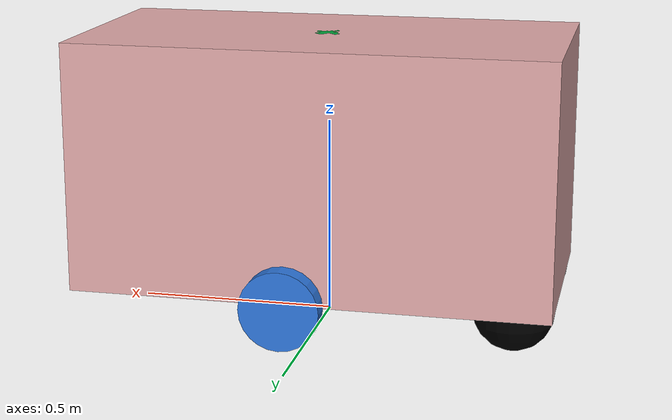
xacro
<?xml version="1.0"?>
<robot xmlns:xacro="http://www.ros.org/wiki/xacro" name="Servera">

    <!-- reference taken from: https://github.com/linorobot/linorobot2/tree/jazzy -->

    <xacro:include filename="$(find servera_control)/urdf/servera_properties.xacro"/>  <!-- All the dimensions | Integral urdf -->
    <xacro:include filename="$(find servera_control)/urdf/solid_bodies.xacro"/>  <!-- All the definitions of the primitive bodies| Integral urdf -->
    <xacro:include filename="$(find servera_control)/urdf/material.xacro"/>  <!-- All the meterial list | consemtics -->
    <xacro:include filename="$(find servera_control)/urdf/gz_plugins.xacro"/>  <!-- gz tags | gz integrartion -->

    <xacro:base
        length="${base_length}"
        width="${base_width}"
        height="${base_height}"
        mass="${base_mass}"
        wheel_radius="${wheel_radius}"
        wheel_pos_z="${wheel_pos_z}"
        mesh_file=""
    />

    <xacro:wheel
        side="left"
        radius="${wheel_radius}"
        width="${wheel_width}"
        pos_x="${wheel_pos_x}"
        pos_y="${wheel_pos_y}"
        pos_z="${wheel_pos_z}"
        mass="${wheel_mass}"
        mesh_file=""
    />

    <xacro:wheel
        side="right"
        radius="${wheel_radius}"
        width="${wheel_width}"
        pos_x="${wheel_pos_x}"
        pos_y="${-wheel_pos_y}"
        pos_z="${wheel_pos_z}"
        mass="${wheel_mass}"
        mesh_file=""
    />

    <xacro:lidar
        update_rate="10"
        ray_count="360"
        min_angle="-3.14159"
        max_angle="3.14159"
        min_range="0.1"
        max_range="10.0"
        frame_id="lidar_link"
        topic_name="scan">  <!-- Do not use "/" for topic names, ie "/scan"; instead use "scan"-->
        <origin xyz="0.0 0.0 ${base_height-wheel_radius}" rpy="0 0 0"/>
    </xacro:lidar>

    <xacro:caster_wheel
      side="right"
      mass="0.01"
      base_length="${base_length}"
      base_width="${base_width}"
      wheel_radius="${wheel_radius}"
      wheel_pos_z="${wheel_pos_z}"
    />

    <xacro:caster_wheel
      side="left"
      mass="0.01"
      base_length="${base_length}"
      base_width="${base_width}"
      wheel_radius="${wheel_radius}"
      wheel_pos_z="${wheel_pos_z}"
    />
</robot>

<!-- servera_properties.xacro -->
<robot xmlns:xacro="http://ros.org/wiki/xacro">

  <xacro:property name="base_length" value="1.2" />
  <xacro:property name="base_width" value="0.6" />
  <xacro:property name="base_height" value="0.625" />
  <xacro:property name="base_mass" value="50" />

  <xacro:property name="wheel_radius" value="0.1" />
  <xacro:property name="wheel_width" value="0.05" />

  <xacro:property name="wheel_pos_x" value="0.05" />
  <xacro:property name="wheel_pos_y" value="0.325" />
  <xacro:property name="wheel_pos_z" value="-0.1" />

  <xacro:property name="wheel_mass" value=".3" />
  <xacro:property name="wheel_torque" value="20" />

  <xacro:property name="front_caster_wheel" value="true" />
  <xacro:property name="rear_caster_wheel" value="true" />

</robot>

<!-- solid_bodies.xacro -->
<robot xmlns:xacro="http://ros.org/wiki/xacro">

  <xacro:macro name="base" params="length width height mass wheel_radius wheel_pos_z mesh_file">

    <link name="base_footprint"/>

    <link name="base_link">
      <visual>
        <origin xyz="0 0 ${height/2 - wheel_radius}" rpy="0 0 0"/>
        <geometry>
          <xacro:if value="${mesh_file == ''}">
            <box size="${length} ${width} ${height}"/>
          </xacro:if>
          <xacro:unless value="${mesh_file == ''}">
            <mesh filename="${mesh_file}" scale="1 1 1"/>
          </xacro:unless>
        </geometry>
        <material name="yellow">
          <color rgba="0.8784 0.6627 0.6627 1.0"/>
        </material>
      </visual>

      <collision>
        <origin xyz="0 0 ${height/2 - wheel_radius}" rpy="0 0 0"/>
        <geometry>
          <box size="${length} ${width} ${height}"/>
        </geometry>
      </collision>

      <inertial>
        <origin xyz="0 0 ${height/2 - wheel_radius}" rpy="0 0 0"/>
        <mass value="${mass}"/>
        <inertia ixx="${(1/12) * mass * ((width  * width)  + (height * height))}" ixy="0.0" ixz="0.0"
                 iyy="${(1/12) * mass * ((length * length) + (height * height))}" iyz="0.0"
                 izz="${(1/12) * mass * ((length * length) + (width  * width))}"/>
      </inertial>
    </link>

    <gazebo reference="base_link">
      <visual>
        <material>
          <ambient>0.8392 0.6314 0.0 1.0</ambient>
          <diffuse>0.8392 0.6314 0.0 1.0</diffuse>
          <specular>0.99 0.99 0.99 1.0</specular>
          <emissive>0.0 0.0 0.0 0.0</emissive>
        </material>
      </visual>
    </gazebo>

    <joint name="base_to_footprint" type="fixed">
      <parent link="base_footprint"/>
      <child link="base_link"/>
      <origin xyz="0 0 ${wheel_radius - wheel_pos_z}" rpy="0 0 0"/>
    </joint>
  </xacro:macro>

<!-- ====================================================== Wheels ============================================ -->

  <xacro:macro name="wheel" params="side radius width pos_x pos_y pos_z mass mesh_file">
    <link name="${side}_wheel_link">
      <visual>
        <origin xyz="0 0 0" rpy="${pi/2} 0 0"/>
        <geometry>
          <xacro:if value="${mesh_file == ''}">
            <cylinder radius="${radius}" length="${width}"/>
          </xacro:if>
          <xacro:unless value="${mesh_file == ''}">
            <mesh filename="${mesh_file}" scale="1 1 1"/>
          </xacro:unless>
        </geometry>
        <material name="blue">
            <color rgba="0.1764 0.4588 0.8509 1.0"/>
        </material>
      </visual>
      <collision>
        <origin xyz="0 0 0" rpy="${pi/2} 0 0"/>
        <geometry>
          <cylinder radius="${radius}" length="${width}"/>
        </geometry>
      </collision>

      <inertial>
        <origin xyz="0 0 0" rpy="0 0 0"/>
        <mass value="${mass}"/>
        <inertia ixx="${(2/5) * mass * (radius * radius)}" ixy="0" ixz="0"
                 iyy="${(2/5) * mass * (radius * radius)}" iyz="0"
                 izz="${(2/5) * mass * (radius * radius)}" />
      </inertial>
    </link>
    <gazebo reference="${side}_wheel_link">
      <mu1>1.0</mu1>
      <mu2>1.0</mu2>
      <kp>10000000.0</kp>
      <kd>1.0</kd>
      <visual>
        <material>
          <ambient>0.1764 0.4588 0.8509 1.0</ambient>
          <diffuse>0.1764 0.4588 0.8509 1.0</diffuse>
          <specular>0.1764 0.4588 0.8509 1.0</specular>
          <emissive>0.0 0.0 0.0 0.0</emissive>
        </material>
      </visual>
    </gazebo>
    <joint name="${side}_wheel_joint" type="continuous">
      <axis xyz="0 1 0" />
      <parent link="base_link"/>
      <child link="${side}_wheel_link"/>
      <origin xyz="${pos_x} ${pos_y} ${pos_z}" rpy="0 0 0"/>
    </joint>
  </xacro:macro>

<!-- ======================================================  Castor Wheels ============================================ -->

  <xacro:macro name="caster_wheel" params="side mass base_length base_width wheel_radius wheel_pos_z">
    <xacro:property name="caster_wheel_radius" value="${(wheel_radius - wheel_pos_z) / 2}" />

    <!-- ADD "base_length" IN THE 'params' LIST, IF YOU WANT TO UNCOMMENT THE FOLLOWING
    (N.B: this snippet is taken from linorobot2, and is not reuired in servera) -->

    <xacro:if value="${side == 'right'}">
        <xacro:property name="caster_wheel_x" value="-${(base_length / 2) - caster_wheel_radius}" />
        <xacro:property name="caster_wheel_y" value="-${(base_width / 2) - caster_wheel_radius}" />
      </xacro:if>

    <xacro:if value="${side == 'left'}">
        <xacro:property name="caster_wheel_x" value="-${(base_length / 2) - caster_wheel_radius}" />
        <xacro:property name="caster_wheel_y" value="${(base_width / 2) - caster_wheel_radius}" />
    </xacro:if>

    <link name="${side}_caster_wheel_link">
      <visual>
        <origin xyz="0 0 0" rpy="0 0 0"/>
        <geometry>
          <sphere radius="${caster_wheel_radius}" />
        </geometry>
        <material name="black">
            <color rgba="0.0 0.0 0.0 1.0"/>
        </material>
      </visual>

      <collision>
        <origin xyz="0 0 0" rpy="0 0 0"/>
        <geometry>
          <sphere radius="${caster_wheel_radius}" />
        </geometry>
      </collision>

      <inertial>
        <origin xyz="0 0 0" rpy="0 0 0"/>
        <mass value="${mass}"/>
        <inertia ixx="${(2/5) * mass * (caster_wheel_radius * caster_wheel_radius)}" ixy="0" ixz="0"
                 iyy="${(2/5) * mass * (caster_wheel_radius * caster_wheel_radius)}" iyz="0"
                 izz="${(2/5) * mass * (caster_wheel_radius * caster_wheel_radius)}" />
      </inertial>
    </link>

    <gazebo reference="${side}_caster_wheel_link">
        <mu1>0.01</mu1>
        <mu2>0.01</mu2>
    </gazebo>

    <joint name="${side}_caster_wheel_joint" type="fixed">
      <parent link="base_link"/>
      <child link="${side}_caster_wheel_link"/>
      <origin xyz=" ${caster_wheel_x} ${caster_wheel_y} -${caster_wheel_radius}" rpy="0 0 0"/>
    </joint>
  </xacro:macro>

</robot>

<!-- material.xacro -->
<robot xmlns:xacro="http://www.ros.org/wiki/xacro">

  <!-- Basic Primary Colors -->
  <material name="red">
    <color rgba="1.0 0.0 0.0 1.0"/>
  </material>

  <material name="green">
    <color rgba="0.0 1.0 0.0 1.0"/>
  </material>

  <material name="blue">
    <color rgba="0.0 0.0 1.0 1.0"/>
  </material>

  <material name="white">
    <color rgba="1.0 1.0 1.0 1.0"/>
  </material>

  <material name="black">
    <color rgba="0.0 0.0 0.0 1.0"/>
  </material>

  <material name="grey">
    <color rgba="0.5 0.5 0.5 1.0"/>
  </material>

  <material name="light_grey">
    <color rgba="0.7 0.7 0.7 1.0"/>
  </material>

  <material name="dark_grey">
    <color rgba="0.3 0.3 0.3 1.0"/>
  </material>

  <!-- Secondary Colors -->
  <material name="yellow">
    <color rgba="1.0 1.0 0.0 1.0"/>
  </material>

  <material name="cyan">
    <color rgba="0.0 1.0 1.0 1.0"/>
  </material>

  <material name="magenta">
    <color rgba="1.0 0.0 1.0 1.0"/>
  </material>

  <material name="orange">
    <color rgba="1.0 0.647 0.0 1.0"/>
  </material>

  <material name="purple">
    <color rgba="0.5 0.0 0.5 1.0"/>
  </material>

  <material name="pink">
    <color rgba="1.0 0.753 0.796 1.0"/>
  </material>

  <material name="brown">
    <color rgba="0.647 0.165 0.165 1.0"/>
  </material>

  <!-- Darker Variants -->
  <material name="dark_red">
    <color rgba="0.5 0.0 0.0 1.0"/>
  </material>

  <material name="dark_green">
    <color rgba="0.0 0.5 0.0 1.0"/>
  </material>

  <material name="dark_blue">
    <color rgba="0.0 0.0 0.5 1.0"/>
  </material>

  <!-- Lighter Variants -->
  <material name="light_red">
    <color rgba="1.0 0.5 0.5 1.0"/>
  </material>

  <material name="light_green">
    <color rgba="0.5 1.0 0.5 1.0"/>
  </material>

  <material name="light_blue">
    <color rgba="0.5 0.5 1.0 1.0"/>
  </material>

  <!-- Metallic Materials -->
  <material name="silver">
    <color rgba="0.75 0.75 0.75 1.0"/>
  </material>

  <material name="gold">
    <color rgba="1.0 0.843 0.0 1.0"/>
  </material>

</robot>

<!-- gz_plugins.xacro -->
<robot xmlns:xacro="http://www.ros.org/wiki/xacro" >
    <xacro:include filename="$(find servera_control)/urdf/gz_lidar.xacro"/>
    <xacro:include filename="$(find servera_control)/urdf/gz_ros2_control.xacro"/> <!-- gz only-->
    <xacro:include filename="$(find servera_control)/urdf/gz-hw-system_ros2_control.xacro"/>

    <gazebo>
        <plugin filename="gz-sim-sensors-system" name="gz::sim::systems::Sensors">
            <render_engine>ogre2</render_engine>
        </plugin>
    </gazebo>

</robot>

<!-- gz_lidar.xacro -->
<robot xmlns:xacro="http://ros.org/wiki/xacro">

  <xacro:macro name="lidar" params="*origin update_rate ray_count min_angle max_angle min_range max_range frame_id topic_name">

    <link name="${frame_id}">
      <visual>
        <origin xyz="0 0 -0.025" rpy="0 0 0"/>
        <geometry>
          <cylinder radius="0.0375" length="0.05"/>
        </geometry>
        <material name="green">
          <color rgba="0.003 0.639 0.223 1.0"/>
        </material>
      </visual>

      <collision>
        <origin xyz="0 0 -0.025" rpy="0 0 0"/>
        <geometry>
          <cylinder radius="0.0375" length="0.05"/>
        </geometry>
      </collision>

      <inertial>
        <origin xyz="0 0 0" rpy="0 0 0"/>
        <mass value="0.1"/>
        <inertia ixx="${(1/12) * 0.1 * (3 * 0.0375 * 0.0375 + 0.05 * 0.05)}"
                 ixy="0"
                 ixz="0"
                 iyy="${(1/12) * 0.1 * (3 * 0.0375 * 0.0375 + 0.05 * 0.05)}"
                 iyz="0"
                 izz="${(1/2) * 0.1 * (0.0375 * 0.0375)}" />
      </inertial>
    </link>

    <joint name="${frame_id}_to_base_link" type="fixed">
      <parent link="base_link"/>
      <child link="${frame_id}"/>
      <xacro:insert_block name="origin" />
    </joint>

    <!-- Gazebo material properties -->
    <gazebo reference="${frame_id}">
      <visual>
        <material>
          <ambient>0.003 0.639 0.223 1.0</ambient>
          <diffuse>0.003 0.639 0.223 1.0</diffuse>
          <specular>0.003 0.639 0.223 1.0</specular>
          <emissive>0.0 0.0 0.0 0.0</emissive>
        </material>
      </visual>
    </gazebo>

    <!-- Gazebo lidar sensor -->
    <gazebo reference="${frame_id}">
      <sensor name="lidar_link" type="gpu_lidar">
        <pose relative_to='${frame_id}'>0 0 0 0 0 0</pose>
        <topic>${topic_name}</topic>   <!-- Do not use "/" for topic names, ie "/scan"; instead use "scan"-->
        <update_rate>${update_rate}</update_rate>
        <always_on>true</always_on>
        <visualize>true</visualize>
        <lidar>
          <scan>
            <horizontal>
              <samples>${ray_count}</samples>
              <resolution>1</resolution>
              <min_angle>${min_angle}</min_angle>
              <max_angle>${max_angle}</max_angle>
            </horizontal>
            <vertical>
              <samples>1</samples>
              <resolution>1</resolution>
              <min_angle>0.0</min_angle>
              <max_angle>0.0</max_angle>
            </vertical>
          </scan>
          <range>
            <min>${min_range}</min>
            <max>${max_range}</max>
            <resolution>0.01</resolution>
          </range>
          <!-- Add noise for more realistic simulation -->
          <noise>
            <type>gaussian</type>
            <mean>0.0</mean>
            <stddev>0.01</stddev>
          </noise>
        </lidar>
      </sensor>
    </gazebo>
  </xacro:macro>
</robot>
